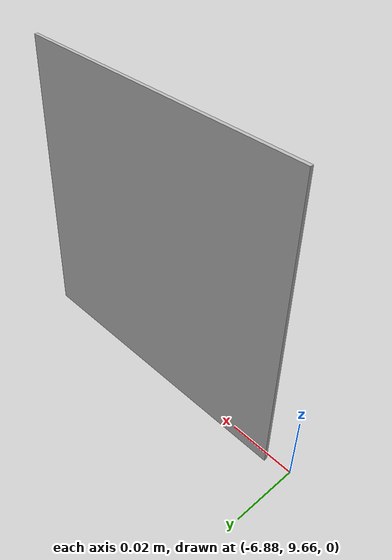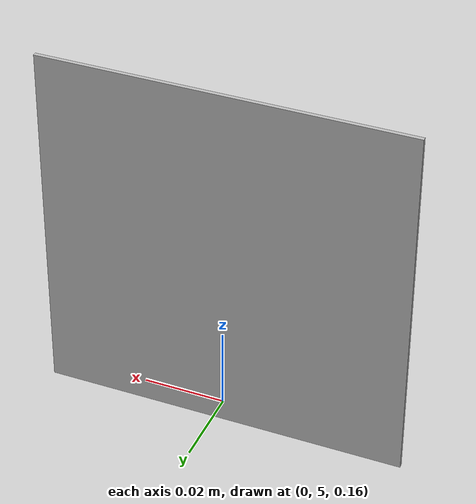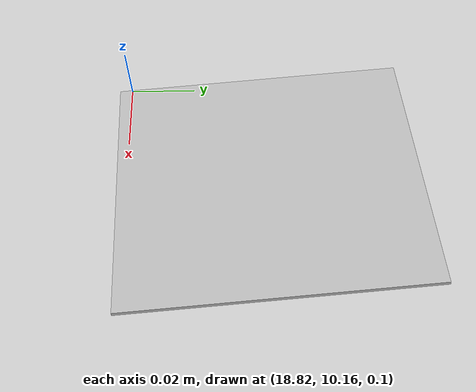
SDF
<sdf version="1.7">
 <world name="default">
  <light name="sun" type="directional">
   <pose>0 0 10 0 -0 0</pose>
   <diffuse>0.8 0.8 0.8 1</diffuse>
   <specular>0.2 0.2 0.2 1</specular>
   <attenuation>
    <range>1000</range>
    <constant>0.9</constant>
    <linear>0.01</linear>
    <quadratic>0.001</quadratic>
   </attenuation>
   <direction>-0.5 0.1 -0.9</direction>
   <spot><inner_angle>0</inner_angle><outer_angle>0</outer_angle><falloff>0</falloff></spot>
  </light>
  <model name="ground_plane">
   <static>1</static>
   <link name="link">
    <collision name="collision">
     <geometry><plane><normal>0 0 1</normal><size>100 100</size></plane></geometry>
     <surface><friction><ode><mu>100</mu><mu2>50</mu2></ode></friction></surface>
    </collision>
    <visual name="visual">
     <cast_shadows>0</cast_shadows>
     <geometry><plane><normal>0 0 1</normal><size>100 100</size></plane></geometry>
     <material>
      <script><uri>file://media/materials/scripts/gazebo.material</uri><name>Gazebo/Grey</name></script>
     </material>
    </visual>
   </link>
  </model>
  <physics type="ode">
   <real_time_update_rate>1000</real_time_update_rate>
   <max_step_size>0.001</max_step_size>
   <real_time_factor>1</real_time_factor>
   <ode>
    <solver>
     <type>quick</type>
     <iters>150</iters>
     <precon_iters>0</precon_iters>
     <sor>1.4</sor>
     <use_dynamic_moi_rescaling>1</use_dynamic_moi_rescaling>
    </solver>
    <constraints>
     <cfm>1e-05</cfm>
     <erp>0.2</erp>
     <contact_max_correcting_vel>2000</contact_max_correcting_vel>
     <contact_surface_layer>0.01</contact_surface_layer>
    </constraints>
   </ode>
  </physics>
  <scene><ambient>0.4 0.4 0.4 1</ambient><background>0.7 0.7 0.7 1</background><shadows>1</shadows></scene>
  <gravity>0 0 -9.8</gravity>
  <magnetic_field>6e-06 2.3e-05 -4.2e-05</magnetic_field>
  <atmosphere type="adiabatic"/>
  <spherical_coordinates>
   <surface_model>EARTH_WGS84</surface_model>
   <latitude_deg>0</latitude_deg>
   <longitude_deg>0</longitude_deg>
   <elevation>0</elevation>
   <heading_deg>0</heading_deg>
  </spherical_coordinates>
  <model name="marker26_8cm">
   <static>0</static>
   <link name="marker">
    <inertial>
     <mass>0.1</mass>
     <inertia><ixx>0</ixx><ixy>0</ixy><ixz>0</ixz><iyy>0</iyy><iyz>0</iyz><izz>0</izz></inertia>
    </inertial>
    <visual name="visual">
     <geometry><box><size>0.09 0.09 0.001</size></box></geometry>
     <material>
      <script>
       <uri>model://marker26_8cm/material/scripts</uri>
       <uri>model://marker26_8cm/material/textures</uri>
       <name>Aruco/marker26_8cm</name>
      </script>
     </material>
    </visual>
    <collision name="collision"><geometry><box><size>0.09 0.09 0.02</size></box></geometry></collision>
    <self_collide>1</self_collide>
    <kinematic>1</kinematic>
   </link>
   <pose>0 5 0.2 1.57087 -0 0</pose>
  </model>
  <model name="marker26_8cm_0">
   <static>0</static>
   <link name="marker">
    <gravity>0</gravity>
    <visual name="visual">
     <geometry><box><size>0.09 0.09 0.001</size></box></geometry>
     <material>
      <script>
       <uri>model://marker26_8cm/material/scripts</uri>
       <uri>model://marker26_8cm/material/textures</uri>
       <name>Aruco/marker26_8cm</name>
      </script>
     </material>
    </visual>
    <collision name="collision"><geometry><box><size>0.09 0.09 0.02</size></box></geometry></collision>
    <inertial>
     <inertia><ixx>1</ixx><ixy>0</ixy><ixz>0</ixz><iyy>1</iyy><iyz>0</iyz><izz>1</izz></inertia>
     <mass>1</mass>
    </inertial>
   </link>
   <pose>18.8591 10.2035 0.111518 0.025704 -0.272366 0.06641</pose>
  </model>
  <model name="marker26_8cm_clone">
   <static>0</static>
   <link name="marker">
    <inertial>
     <mass>0.1</mass>
     <inertia><ixx>0</ixx><ixy>0</ixy><ixz>0</ixz><iyy>0</iyy><iyz>0</iyz><izz>0</izz></inertia>
    </inertial>
    <visual name="visual">
     <geometry><box><size>0.09 0.09 0.001</size></box></geometry>
     <material>
      <script>
       <uri>model://marker26_8cm/material/scripts</uri>
       <uri>model://marker26_8cm/material/textures</uri>
       <name>Aruco/marker26_8cm</name>
      </script>
     </material>
    </visual>
    <collision name="collision"><geometry><box><size>0.09 0.09 0.02</size></box></geometry></collision>
    <self_collide>1</self_collide>
    <kinematic>1</kinematic>
   </link>
   <pose>-1 10 0.5 1.57 -0 4e-06</pose>
  </model>
  <model name="marker26_8cm_clone_0">
   <static>0</static>
   <link name="marker">
    <inertial>
     <mass>0.1</mass>
     <inertia><ixx>0</ixx><ixy>0</ixy><ixz>0</ixz><iyy>0</iyy><iyz>0</iyz><izz>0</izz></inertia>
    </inertial>
    <visual name="visual">
     <geometry><box><size>0.09 0.09 0.001</size></box></geometry>
     <material>
      <script>
       <uri>model://marker26_8cm/material/scripts</uri>
       <uri>model://marker26_8cm/material/textures</uri>
       <name>Aruco/marker26_8cm</name>
      </script>
     </material>
    </visual>
    <collision name="collision"><geometry><box><size>0.09 0.09 0.02</size></box></geometry></collision>
    <self_collide>1</self_collide>
    <kinematic>1</kinematic>
   </link>
   <pose>-5 8 0.3 1.57087 0.000132 1.57</pose>
  </model>
  <model name="marker26_8cm_clone_1">
   <static>0</static>
   <link name="marker">
    <inertial>
     <mass>0.1</mass>
     <inertia><ixx>0</ixx><ixy>0</ixy><ixz>0</ixz><iyy>0</iyy><iyz>0</iyz><izz>0</izz></inertia>
    </inertial>
    <visual name="visual">
     <geometry><box><size>0.09 0.09 0.001</size></box></geometry>
     <material>
      <script>
       <uri>model://marker26_8cm/material/scripts</uri>
       <uri>model://marker26_8cm/material/textures</uri>
       <name>Aruco/marker26_8cm</name>
      </script>
     </material>
    </visual>
    <collision name="collision"><geometry><box><size>0.09 0.09 0.02</size></box></geometry></collision>
    <self_collide>1</self_collide>
    <kinematic>1</kinematic>
   </link>
   <pose>-6.82797 9.66173 0.044997 1.57087 0.000131 5e-06</pose>
  </model>
 </world>
</sdf>
